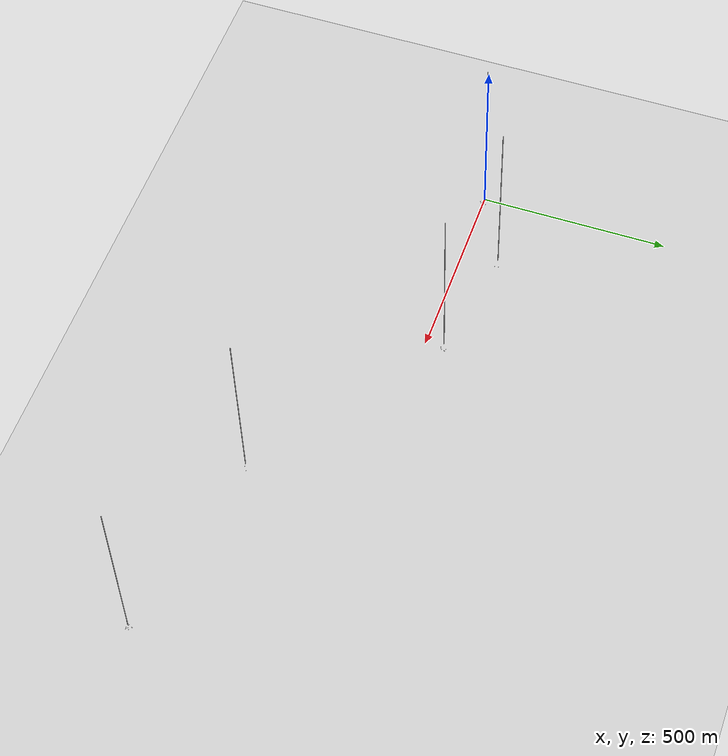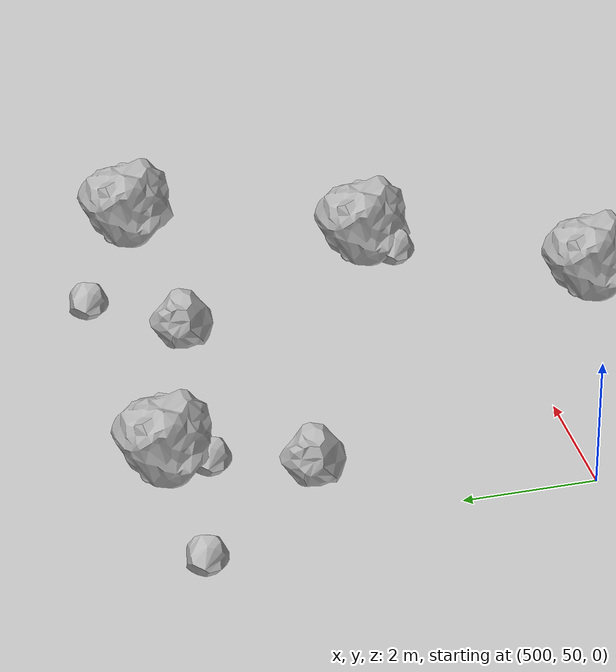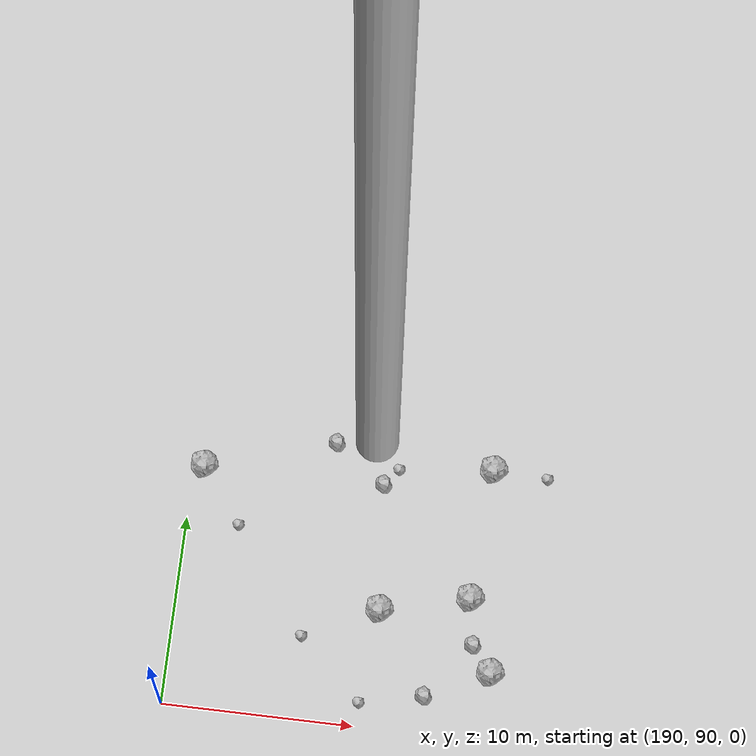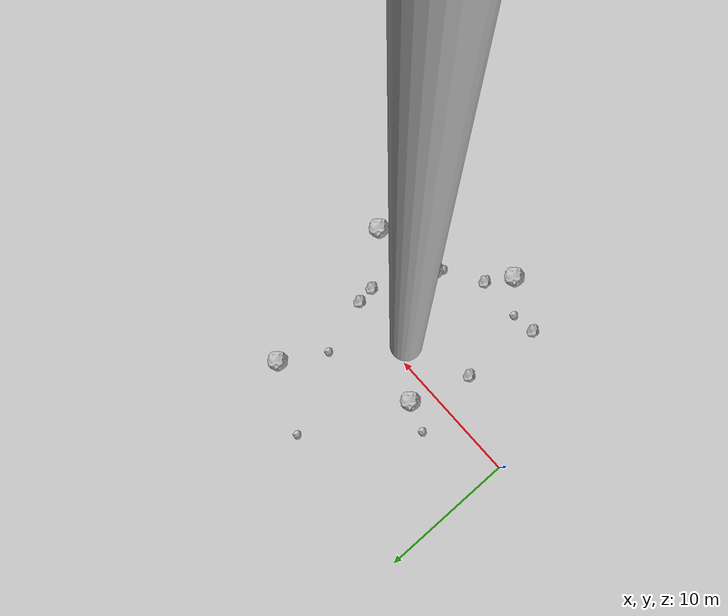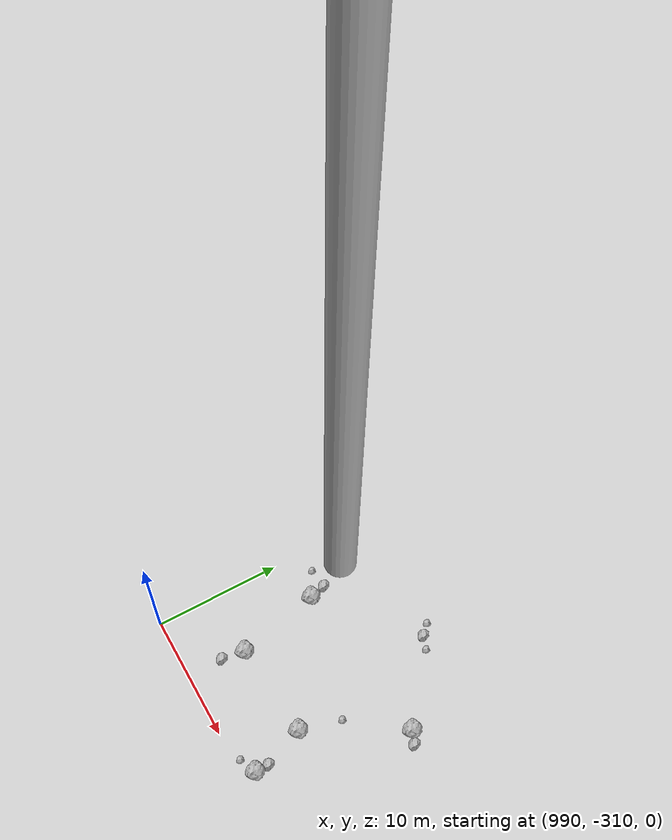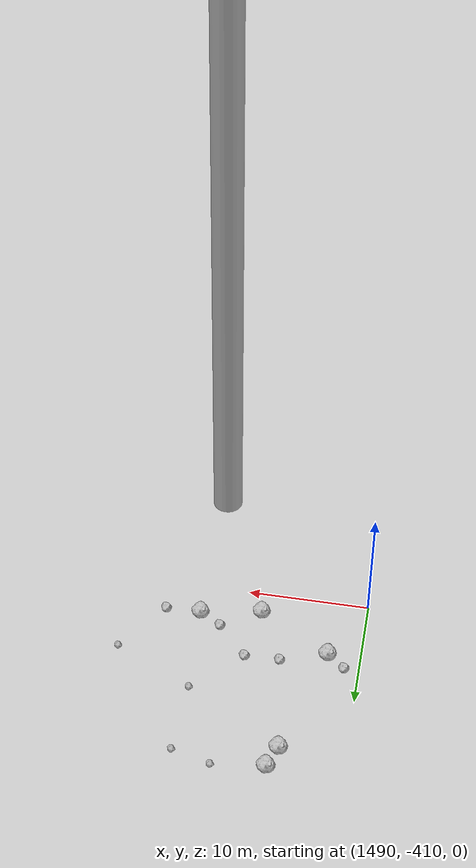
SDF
<?xml version="1.0" ?>
<sdf version="1.6">
  <world name="default">

    <include>
      <uri>model://custom_ground</uri>
    </include>

    <include>
      <uri>model://sun</uri>
    </include>

    <spherical_coordinates>
      <surface_model>EARTH_WGS84</surface_model>
      <latitude_deg>38.161479</latitude_deg>
      <longitude_deg>-122.454630</longitude_deg>
      <elevation>488.0</elevation>
      <heading_deg>90</heading_deg>
    </spherical_coordinates>

    <model name="rock1_0_0">
      <include>
        <uri>model://rock1</uri>
        <pose>9.300680703743975 -9.875671974864595 0.5 0 0 0</pose>
      </include>
    </model>
    <model name="rock1_0_1">
      <include>
        <uri>model://rock1</uri>
        <pose>16.118583935771134 6.544404566507197 0.5 0 0 0</pose>
      </include>
    </model>
    <model name="rock1_0_2">
      <include>
        <uri>model://rock1</uri>
        <pose>18.30341876928143 -5.0785482141052185 0.5 0 0 0</pose>
      </include>
    </model>
    <model name="rock1_0_3">
      <include>
        <uri>model://rock1</uri>
        <pose>7.717741075988864 1.4936348896584057 0.5 0 0 0</pose>
      </include>
    </model>
    <model name="rock1_0_4">
      <include>
        <uri>model://rock1</uri>
        <pose>13.531813354573455 -5.968627312704866 0.5 0 0 0</pose>
      </include>
    </model>
    <model name="rock2_0_0">
      <include>
        <uri>model://rock2</uri>
        <pose>6.23988936900735 -2.8072095209993098 0.3 0 0 0</pose>
      </include>
    </model>
    <model name="rock2_0_1">
      <include>
        <uri>model://rock2</uri>
        <pose>5.566111406812279 -8.274289509342596 0.3 0 0 0</pose>
      </include>
    </model>
    <model name="rock2_0_2">
      <include>
        <uri>model://rock2</uri>
        <pose>15.478532871978675 -1.839660455690403 0.3 0 0 0</pose>
      </include>
    </model>
    <model name="rock2_0_3">
      <include>
        <uri>model://rock2</uri>
        <pose>15.345717320653627 -0.5750697514808785 0.3 0 0 0</pose>
      </include>
    </model>
    <model name="rock2_0_4">
      <include>
        <uri>model://rock2</uri>
        <pose>10.43448751866733 -8.091433760748714 0.3 0 0 0</pose>
      </include>
    </model>
    <model name="rock3_0_0">
      <include>
        <uri>model://rock3</uri>
        <pose>13.022147178472064 -6.534613345066511 0.2 0 0 0</pose>
      </include>
    </model>
    <model name="rock3_0_1">
      <include>
        <uri>model://rock3</uri>
        <pose>7.247997527270231 -8.05183036369426 0.2 0 0 0</pose>
      </include>
    </model>
    <model name="rock3_0_2">
      <include>
        <uri>model://rock3</uri>
        <pose>14.139188716176339 3.4174012537350933 0.2 0 0 0</pose>
      </include>
    </model>
    <model name="rock3_0_3">
      <include>
        <uri>model://rock3</uri>
        <pose>11.280422616139823 8.99493636908078 0.2 0 0 0</pose>
      </include>
    </model>
    <model name="rock3_0_4">
      <include>
        <uri>model://rock3</uri>
        <pose>5.4978817593927705 2.288804928105595 0.2 0 0 0</pose>
      </include>
    </model>
    <model name="rock1_1_0">
      <include>
        <uri>model://rock1</uri>
        <pose>205.80404495340844 104.43784791129967 0.5 0 0 0</pose>
      </include>
    </model>
    <model name="rock1_1_1">
      <include>
        <uri>model://rock1</uri>
        <pose>205.3358596088164 97.41952656149506 0.5 0 0 0</pose>
      </include>
    </model>
    <model name="rock1_1_2">
      <include>
        <uri>model://rock1</uri>
        <pose>190.5890937775094 102.9079552457428 0.5 0 0 0</pose>
      </include>
    </model>
    <model name="rock1_1_3">
      <include>
        <uri>model://rock1</uri>
        <pose>206.79925623082337 93.60622829712175 0.5 0 0 0</pose>
      </include>
    </model>
    <model name="rock1_1_4">
      <include>
        <uri>model://rock1</uri>
        <pose>200.68775613251574 96.27574532909327 0.5 0 0 0</pose>
      </include>
    </model>
    <model name="rock2_1_0">
      <include>
        <uri>model://rock2</uri>
        <pose>197.38512293784405 104.96904494679177 0.3 0 0 0</pose>
      </include>
    </model>
    <model name="rock2_1_1">
      <include>
        <uri>model://rock2</uri>
        <pose>206.99097901543269 93.77687366423157 0.3 0 0 0</pose>
      </include>
    </model>
    <model name="rock2_1_2">
      <include>
        <uri>model://rock2</uri>
        <pose>200.09652284558095 103.01190332567774 0.3 0 0 0</pose>
      </include>
    </model>
    <model name="rock2_1_3">
      <include>
        <uri>model://rock2</uri>
        <pose>203.47510029424 92.01465189129667 0.3 0 0 0</pose>
      </include>
    </model>
    <model name="rock2_1_4">
      <include>
        <uri>model://rock2</uri>
        <pose>205.7151515970609 94.99292866169735 0.3 0 0 0</pose>
      </include>
    </model>
    <model name="rock3_1_0">
      <include>
        <uri>model://rock3</uri>
        <pose>200.1538715143253 91.2566855269578 0.2 0 0 0</pose>
      </include>
    </model>
    <model name="rock3_1_1">
      <include>
        <uri>model://rock3</uri>
        <pose>208.65215788911206 104.29785928158081 0.2 0 0 0</pose>
      </include>
    </model>
    <model name="rock3_1_2">
      <include>
        <uri>model://rock3</uri>
        <pose>196.77502294930574 94.39479828832923 0.2 0 0 0</pose>
      </include>
    </model>
    <model name="rock3_1_3">
      <include>
        <uri>model://rock3</uri>
        <pose>192.76016330418014 99.9097210922285 0.2 0 0 0</pose>
      </include>
    </model>
    <model name="rock3_1_4">
      <include>
        <uri>model://rock3</uri>
        <pose>200.81670831223272 103.89090444537433 0.2 0 0 0</pose>
      </include>
    </model>
    <model name="rock1_2_0">
      <include>
        <uri>model://rock1</uri>
        <pose>505.2528734851181 48.410818336480446 0.5 0 0 0</pose>
      </include>
    </model>
    <model name="rock1_2_1">
      <include>
        <uri>model://rock1</uri>
        <pose>507.14819299532013 51.547765075802616 0.5 0 0 0</pose>
      </include>
    </model>
    <model name="rock1_2_2">
      <include>
        <uri>model://rock1</uri>
        <pose>505.8504028609788 44.475311882484775 0.5 0 0 0</pose>
      </include>
    </model>
    <model name="rock1_2_3">
      <include>
        <uri>model://rock1</uri>
        <pose>501.96557506589465 55.923053559253844 0.5 0 0 0</pose>
      </include>
    </model>
    <model name="rock1_2_4">
      <include>
        <uri>model://rock1</uri>
        <pose>508.61213295376257 55.03916318614783 0.5 0 0 0</pose>
      </include>
    </model>
    <model name="rock2_2_0">
      <include>
        <uri>model://rock2</uri>
        <pose>501.1842634884981 53.893224131304486 0.3 0 0 0</pose>
      </include>
    </model>
    <model name="rock2_2_1">
      <include>
        <uri>model://rock2</uri>
        <pose>502.34129967519607 42.36156989608434 0.3 0 0 0</pose>
      </include>
    </model>
    <model name="rock2_2_2">
      <include>
        <uri>model://rock2</uri>
        <pose>490.74796747803583 53.54368159755944 0.3 0 0 0</pose>
      </include>
    </model>
    <model name="rock2_2_3">
      <include>
        <uri>model://rock2</uri>
        <pose>505.21777224499107 54.89783158706229 0.3 0 0 0</pose>
      </include>
    </model>
    <model name="rock2_2_4">
      <include>
        <uri>model://rock2</uri>
        <pose>490.6495786867914 50.929232791644466 0.3 0 0 0</pose>
      </include>
    </model>
    <model name="rock3_2_0">
      <include>
        <uri>model://rock3</uri>
        <pose>501.71144043841645 55.25833545431187 0.2 0 0 0</pose>
      </include>
    </model>
    <model name="rock3_2_1">
      <include>
        <uri>model://rock3</uri>
        <pose>498.52939890033196 40.61801829057685 0.2 0 0 0</pose>
      </include>
    </model>
    <model name="rock3_2_2">
      <include>
        <uri>model://rock3</uri>
        <pose>499.3559167904996 55.8673796679911 0.2 0 0 0</pose>
      </include>
    </model>
    <model name="rock3_2_3">
      <include>
        <uri>model://rock3</uri>
        <pose>506.28059335801686 56.09997909386231 0.2 0 0 0</pose>
      </include>
    </model>
    <model name="rock3_2_4">
      <include>
        <uri>model://rock3</uri>
        <pose>506.66425510470225 51.10492181937051 0.2 0 0 0</pose>
      </include>
    </model>
    <model name="rock1_3_0">
      <include>
        <uri>model://rock1</uri>
        <pose>993.783708852526 -298.7547473861767 0.5 0 0 0</pose>
      </include>
    </model>
    <model name="rock1_3_1">
      <include>
        <uri>model://rock1</uri>
        <pose>1003.9196648170347 -308.99900804263973 0.5 0 0 0</pose>
      </include>
    </model>
    <model name="rock1_3_2">
      <include>
        <uri>model://rock1</uri>
        <pose>995.2541914124646 -305.3647079138264 0.5 0 0 0</pose>
      </include>
    </model>
    <model name="rock1_3_3">
      <include>
        <uri>model://rock1</uri>
        <pose>1006.8005746155541 -297.3591116061032 0.5 0 0 0</pose>
      </include>
    </model>
    <model name="rock1_3_4">
      <include>
        <uri>model://rock1</uri>
        <pose>1002.6981108037768 -304.75101261755105 0.5 0 0 0</pose>
      </include>
    </model>
    <model name="rock2_3_0">
      <include>
        <uri>model://rock2</uri>
        <pose>994.9039749810026 -307.16151581236153 0.3 0 0 0</pose>
      </include>
    </model>
    <model name="rock2_3_1">
      <include>
        <uri>model://rock2</uri>
        <pose>1003.8751120796925 -307.89251024774785 0.3 0 0 0</pose>
      </include>
    </model>
    <model name="rock2_3_2">
      <include>
        <uri>model://rock2</uri>
        <pose>993.3901522157698 -297.41216618654573 0.3 0 0 0</pose>
      </include>
    </model>
    <model name="rock2_3_3">
      <include>
        <uri>model://rock2</uri>
        <pose>1007.7775823631608 -297.75437660308853 0.3 0 0 0</pose>
      </include>
    </model>
    <model name="rock2_3_4">
      <include>
        <uri>model://rock2</uri>
        <pose>1000.7496070436224 -292.7358127884308 0.3 0 0 0</pose>
      </include>
    </model>
    <model name="rock3_3_0">
      <include>
        <uri>model://rock3</uri>
        <pose>999.9964250851199 -291.96994820088844 0.2 0 0 0</pose>
      </include>
    </model>
    <model name="rock3_3_1">
      <include>
        <uri>model://rock3</uri>
        <pose>991.7784023179771 -297.59847502556033 0.2 0 0 0</pose>
      </include>
    </model>
    <model name="rock3_3_2">
      <include>
        <uri>model://rock3</uri>
        <pose>1003.5428354761244 -301.502802516751 0.2 0 0 0</pose>
      </include>
    </model>
    <model name="rock3_3_3">
      <include>
        <uri>model://rock3</uri>
        <pose>1002.5189448576508 -309.55809217806797 0.2 0 0 0</pose>
      </include>
    </model>
    <model name="rock3_3_4">
      <include>
        <uri>model://rock3</uri>
        <pose>1001.8199199830747 -293.1507062259453 0.2 0 0 0</pose>
      </include>
    </model>
    <model name="rock1_4_0">
      <include>
        <uri>model://rock1</uri>
        <pose>1503.6215277792728 -406.90100955119567 0.5 0 0 0</pose>
      </include>
    </model>
    <model name="rock1_4_1">
      <include>
        <uri>model://rock1</uri>
        <pose>1495.8213843356612 -392.5025756494602 0.5 0 0 0</pose>
      </include>
    </model>
    <model name="rock1_4_2">
      <include>
        <uri>model://rock1</uri>
        <pose>1492.6785457780636 -404.2137943942306 0.5 0 0 0</pose>
      </include>
    </model>
    <model name="rock1_4_3">
      <include>
        <uri>model://rock1</uri>
        <pose>1498.6380289153085 -407.7969715206335 0.5 0 0 0</pose>
      </include>
    </model>
    <model name="rock1_4_4">
      <include>
        <uri>model://rock1</uri>
        <pose>1495.1580021765267 -394.38152085580685 0.5 0 0 0</pose>
      </include>
    </model>
    <model name="rock2_4_0">
      <include>
        <uri>model://rock2</uri>
        <pose>1501.7780133106437 -405.80147200719887 0.3 0 0 0</pose>
      </include>
    </model>
    <model name="rock2_4_1">
      <include>
        <uri>model://rock2</uri>
        <pose>1499.25782490471 -402.94996617788865 0.3 0 0 0</pose>
      </include>
    </model>
    <model name="rock2_4_2">
      <include>
        <uri>model://rock2</uri>
        <pose>1506.4925582071814 -406.91121993179013 0.3 0 0 0</pose>
      </include>
    </model>
    <model name="rock2_4_3">
      <include>
        <uri>model://rock2</uri>
        <pose>1496.3931472115898 -403.01111117464984 0.3 0 0 0</pose>
      </include>
    </model>
    <model name="rock2_4_4">
      <include>
        <uri>model://rock2</uri>
        <pose>1491.211057719974 -403.0218909771676 0.3 0 0 0</pose>
      </include>
    </model>
    <model name="rock3_4_0">
      <include>
        <uri>model://rock3</uri>
        <pose>1492.6081600359407 -405.1157824470843 0.2 0 0 0</pose>
      </include>
    </model>
    <model name="rock3_4_1">
      <include>
        <uri>model://rock3</uri>
        <pose>1509.5148937960496 -402.34684787851495 0.2 0 0 0</pose>
      </include>
    </model>
    <model name="rock3_4_2">
      <include>
        <uri>model://rock3</uri>
        <pose>1503.1600805557246 -392.94761207396243 0.2 0 0 0</pose>
      </include>
    </model>
    <model name="rock3_4_3">
      <include>
        <uri>model://rock3</uri>
        <pose>1499.999930536338 -392.0917006498233 0.2 0 0 0</pose>
      </include>
    </model>
    <model name="rock3_4_4">
      <include>
        <uri>model://rock3</uri>
        <pose>1503.0228779693286 -399.12360093603434 0.2 0 0 0</pose>
      </include>
    </model>

    <model name="cylinder_1">
      <static>true</static>
      <link name="link">
        <visual name="visual">
          <geometry>
            <cylinder>
              <radius>1</radius>
              <length>500</length>
            </cylinder>
          </geometry>
        </visual>
      </link>
      <pose>10 0 270 0 0 0</pose>
    </model>

    <model name="cylinder_2">
      <static>true</static>
      <link name="link">
        <visual name="visual">
          <geometry>
            <cylinder>
              <radius>1</radius>
              <length>500</length>
            </cylinder>
          </geometry>
        </visual>
      </link>
      <pose>200 100 270 0 0 0</pose>
    </model>

    <model name="cylinder_3">
      <static>true</static>
      <link name="link">
        <visual name="visual">
          <geometry>
            <cylinder>
              <radius>1</radius>
              <length>500</length>
            </cylinder>
          </geometry>
        </visual>
      </link>
      <pose>500 50 270 0 0 0</pose>
    </model>

    <model name="cylinder_4">
      <static>true</static>
      <link name="link">
        <visual name="visual">
          <geometry>
            <cylinder>
              <radius>1</radius>
              <length>500</length>
            </cylinder>
          </geometry>
        </visual>
      </link>
      <pose>1000 -300 270 0 0 0</pose>
    </model>

    <model name="cylinder_5">
      <static>true</static>
      <link name="link">
        <visual name="visual">
          <geometry>
            <cylinder>
              <radius>1</radius>
              <length>500</length>
            </cylinder>
          </geometry>
        </visual>
      </link>
      <pose>1500 -400 270 0 0 0</pose>
    </model>

  </world>
</sdf>

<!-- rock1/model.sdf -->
<sdf version="1.6">
  <model name="rock1">
    <static>true</static> <!-- Set to true if the model should not move -->
    <pose>0 0 0 0 0 0</pose>

    <!--z offset is 0.5 for full scale-->

    <link name="link">
      <collision name="rock1_collision">
        <geometry>
          <mesh>
            <uri>model://meshes/rock1.dae</uri>
          </mesh>
        </geometry>
      </collision>
      <visual name="rock1_visual">
        <geometry>
          <mesh>
            <uri>model://meshes/rock1.dae</uri>
          </mesh>
        </geometry>
        <material>
          <script>
            <uri>model://materials/scripts/sand_pebbles.material</uri>
            <name>custom_ground/Image</name>
          </script>
        </material>
      </visual>
    </link>
  </model>
</sdf>

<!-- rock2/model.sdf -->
<sdf version="1.6">
  <model name="rock2">
    <static>true</static> <!-- Set to true if the model should not move -->
    <pose>0 0 0 0 0 0</pose>

    <!--z offset is 0.3 for full scale-->

    <link name="link">
      <collision name="rock2_collision">
        <geometry>
          <mesh>
            <uri>model://meshes/rock2.dae</uri>
          </mesh>
        </geometry>
      </collision>
      <visual name="rock2_visual">
        <geometry>
          <mesh>
            <uri>model://meshes/rock2.dae</uri>
          </mesh>
        </geometry>
        <material>
          <script>
            <uri>model://materials/scripts/sand_pebbles.material</uri>
            <name>custom_ground/Image</name>
          </script>
        </material>
      </visual>
    </link>
  </model>
</sdf>

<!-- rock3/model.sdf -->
<sdf version="1.6">
  <model name="rock3">
    <static>true</static> <!-- Set to true if the model should not move -->
    <pose>0 0 0 0 0 0</pose>

    <!--z offset is 0.2 for full scale-->

    <link name="link">
      <collision name="rock3_collision">
        <geometry>
          <mesh>
            <uri>model://meshes/rock3.dae</uri>
          </mesh>
        </geometry>
      </collision>
      <visual name="rock3_visual">
        <geometry>
          <mesh>
            <uri>model://meshes/rock3.dae</uri>
          </mesh>
        </geometry>
        <material>
          <script>
            <uri>model://materials/scripts/sand_pebbles.material</uri>
            <name>custom_ground/Image</name>
          </script>
        </material>
      </visual>
    </link>
  </model>
</sdf>

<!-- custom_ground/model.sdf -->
<sdf version="1.6">
  <model name="custom_ground">
    <static>true</static> <!-- Ground is static and immovable -->
    <link name="ground_link">
      <pose>240 0 0 0 0 0</pose> <!-- Position and orientation relative to the world -->
      <!-- Visual Representation -->
      <visual name="ground_visual">
        <geometry>
          <plane>
            <normal>0 0 1</normal> <!-- Upward facing plane -->
            <size>500 500</size> <!-- Size of the plane -->
          </plane>
        </geometry>
        <material>
          <script>
            <uri>model://materials/scripts/sand_pebbles.material</uri>
            <name>custom_ground/Image</name>
          </script>
        </material>
      </visual>

      <!-- Collision Representation -->
      <collision name="ground_collision">
        <geometry>
          <plane>
            <normal>0 0 1</normal>
            <size>100 100</size>
          </plane>
        </geometry>
      </collision>

    </link>
  </model>
</sdf>
